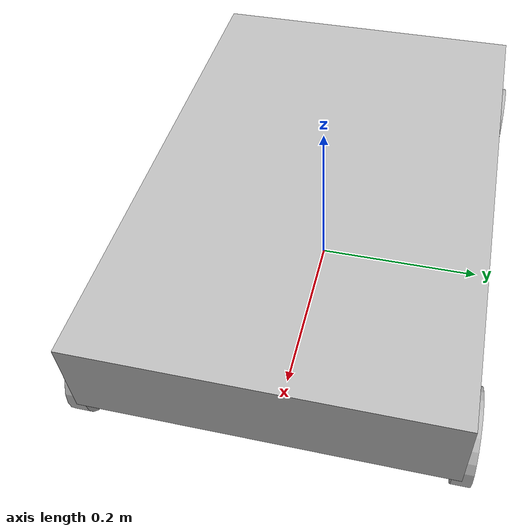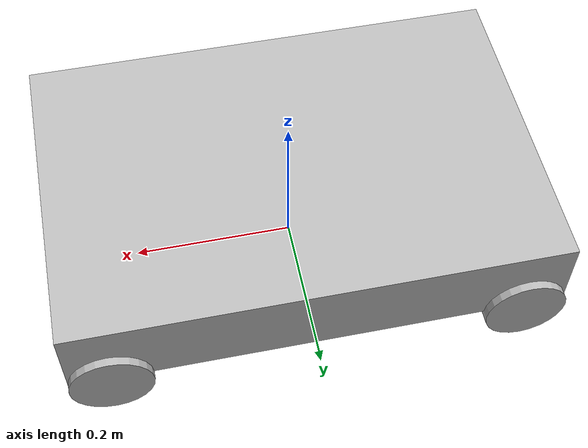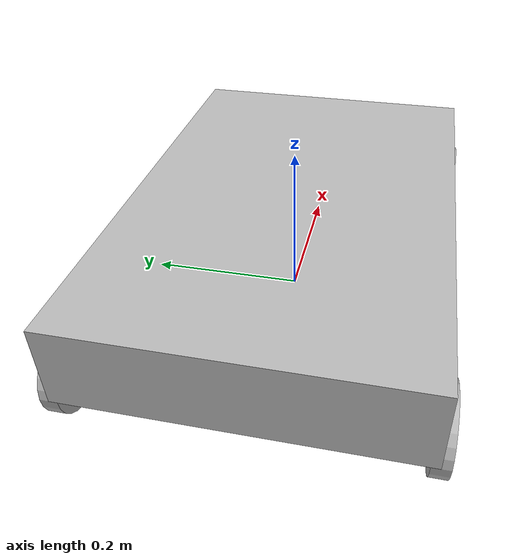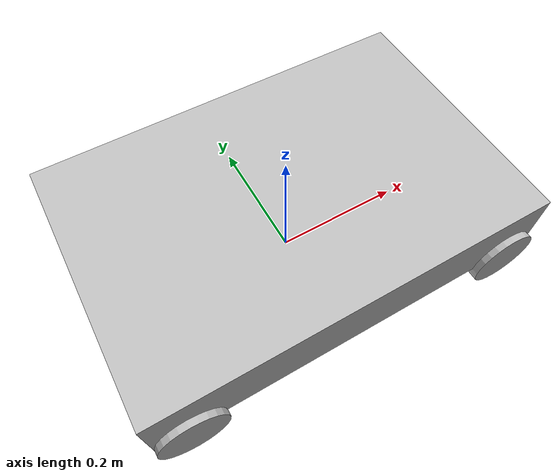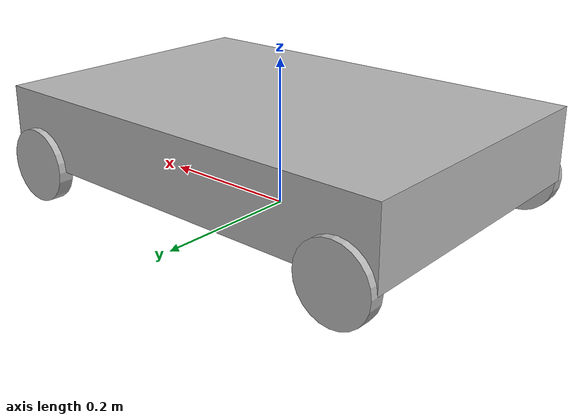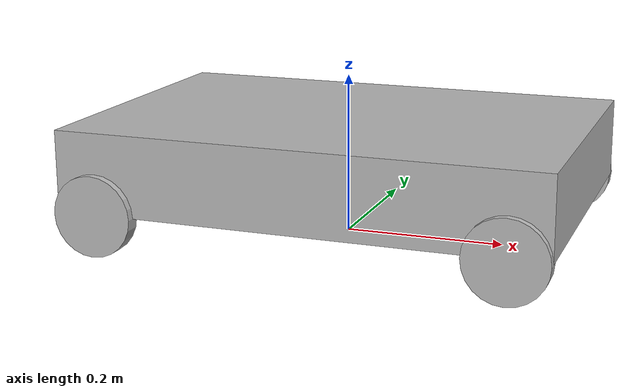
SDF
<?xml version="1.0"?>
<sdf version="1.6">
  <model name="simple_4wd_car">
    <static>false</static>

    <!-- Plugin diff_drive para movimento simples para frente -->
    <plugin name="diff_drive__MODEL_NAME__" filename="libgazebo_ros_diff_drive.so">
      <ros>
        <namespace>__MODEL_NAME__</namespace>
        <remapping>cmd_vel:=cmd_vel</remapping>
      </ros>
      <left_joint>rear_left_wheel_joint</left_joint>
      <right_joint>rear_right_wheel_joint</right_joint>
      <wheel_separation>0.4</wheel_separation>
      <wheel_diameter>0.1</wheel_diameter>
      <publish_odom>true</publish_odom>
      <publish_wheel_tf>true</publish_wheel_tf>
      <publish_odom_tf>true</publish_odom_tf>
    </plugin>

    <!-- Base do carro -->
    <link name="base_link">
      <pose>0 0 0.1 0 0 0</pose>
      <collision name="base_collision">
        <geometry>
          <box>
            <size>0.6 0.4 0.1</size>
          </box>
        </geometry>
      </collision>
      <visual name="base_visual">
        <geometry>
          <box>
            <size>0.6 0.4 0.1</size>
          </box>
        </geometry>
      </visual>
    </link>

    <!-- Rodas -->
    <link name="front_left_wheel">
      <pose>0.25 0.2 0.05 0 1.5708 1.5708</pose>
      <visual name="fl_visual">
        <geometry>
          <cylinder>
            <radius>0.05</radius>
            <length>0.02</length>
          </cylinder>
        </geometry>
      </visual>
      <collision name="fl_collision">
        <geometry>
          <cylinder>
            <radius>0.05</radius>
            <length>0.02</length>
          </cylinder>
        </geometry>
        <surface>
          <friction>
            <ode>
              <mu>0.0</mu>
              <mu2>0.0</mu2>
            </ode>
          </friction>
        </surface>
      </collision>
    </link>

    <link name="front_right_wheel">
      <pose>0.25 -0.2 0.05 0 1.5708 1.5708</pose>
      <visual name="fr_visual">
        <geometry>
          <cylinder>
            <radius>0.05</radius>
            <length>0.02</length>
          </cylinder>
        </geometry>
      </visual>
      <collision name="fr_collision">
        <geometry>
          <cylinder>
            <radius>0.05</radius>
            <length>0.02</length>
          </cylinder>
        </geometry>
        <surface>
          <friction>
            <ode>
              <mu>0.0</mu>
              <mu2>0.0</mu2>
            </ode>
          </friction>
        </surface>
      </collision>
    </link>

    <link name="rear_left_wheel">
      <pose>-0.25 0.2 0.05 0 1.5708 1.5708</pose>
      <visual name="rl_visual">
        <geometry>
          <cylinder>
            <radius>0.05</radius>
            <length>0.02</length>
          </cylinder>
        </geometry>
      </visual>
      <collision name="rl_collision">
        <geometry>
          <cylinder>
            <radius>0.05</radius>
            <length>0.02</length>
          </cylinder>
        </geometry>
        <surface>
          <friction>
            <ode>
              <mu>2.0</mu>
              <mu2>2.0</mu2>
            </ode>
          </friction>
        </surface>
      </collision>
    </link>

    <link name="rear_right_wheel">
      <pose>-0.25 -0.2 0.05 0 1.5708 1.5708</pose>
      <visual name="rr_visual">
        <geometry>
          <cylinder>
            <radius>0.05</radius>
            <length>0.02</length>
          </cylinder>
        </geometry>
      </visual>
      <collision name="rr_collision">
        <geometry>
          <cylinder>
            <radius>0.05</radius>
            <length>0.02</length>
          </cylinder>
        </geometry>
        <surface>
          <friction>
            <ode>
              <mu>2.0</mu>
              <mu2>2.0</mu2>
            </ode>
          </friction>
        </surface>
      </collision>
    </link>

    <!-- Juntas das rodas -->
    <joint name="front_left_wheel_joint" type="fixed">
      <parent>base_link</parent>
      <child>front_left_wheel</child>
      <axis>
        <xyz>0 0 1</xyz>
      </axis>
    </joint>

    <joint name="front_right_wheel_joint" type="fixed">
      <parent>base_link</parent>
      <child>front_right_wheel</child>
      <axis>
        <xyz>0 0 1</xyz>
      </axis>
    </joint>

    <joint name="rear_left_wheel_joint" type="revolute">
      <parent>base_link</parent>
      <child>rear_left_wheel</child>
      <axis>
        <xyz>0 0 1</xyz>
      </axis>
    </joint>

    <joint name="rear_right_wheel_joint" type="revolute">
      <parent>base_link</parent>
      <child>rear_right_wheel</child>
      <axis>
        <xyz>0 0 1</xyz>
      </axis>
    </joint>
  </model>
</sdf>
